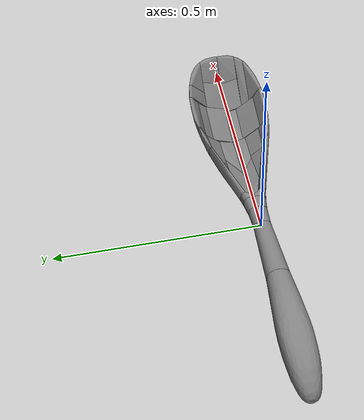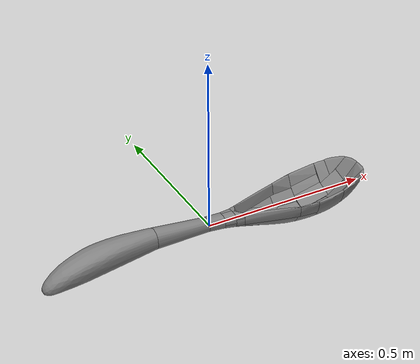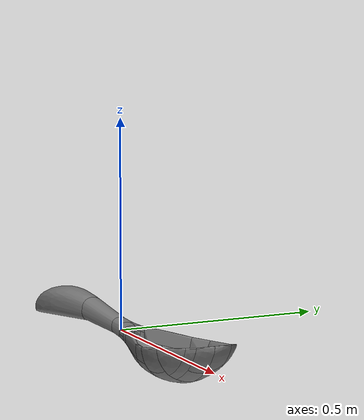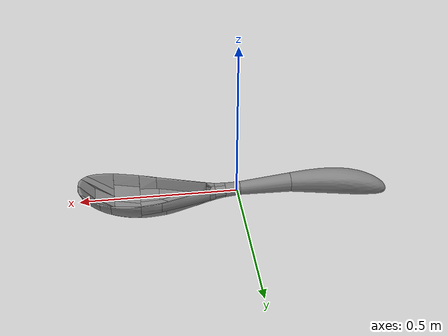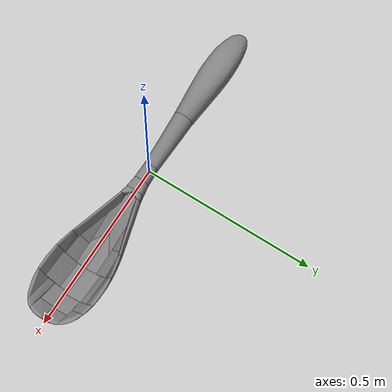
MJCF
<?xml version="1.0" ?>
<mujoco model="034_spoon_2">
  <asset>
    <mesh name="034_spoon_2_mesh" file="034_spoon_2.stl" scale="1.0 1.0 1.0"/>
    <mesh name="034_spoon_2_part_0" file="decomposed/034_spoon_2_decomposed_0.stl" scale="1.0 1.0 1.0"/>
    <mesh name="034_spoon_2_part_1" file="decomposed/034_spoon_2_decomposed_1.stl" scale="1.0 1.0 1.0"/>
    <mesh name="034_spoon_2_part_2" file="decomposed/034_spoon_2_decomposed_2.stl" scale="1.0 1.0 1.0"/>
    <mesh name="034_spoon_2_part_3" file="decomposed/034_spoon_2_decomposed_3.stl" scale="1.0 1.0 1.0"/>
    <mesh name="034_spoon_2_part_4" file="decomposed/034_spoon_2_decomposed_4.stl" scale="1.0 1.0 1.0"/>
    <mesh name="034_spoon_2_part_5" file="decomposed/034_spoon_2_decomposed_5.stl" scale="1.0 1.0 1.0"/>
    <mesh name="034_spoon_2_part_6" file="decomposed/034_spoon_2_decomposed_6.stl" scale="1.0 1.0 1.0"/>
    <mesh name="034_spoon_2_part_7" file="decomposed/034_spoon_2_decomposed_7.stl" scale="1.0 1.0 1.0"/>
    <mesh name="034_spoon_2_part_8" file="decomposed/034_spoon_2_decomposed_8.stl" scale="1.0 1.0 1.0"/>
    <mesh name="034_spoon_2_part_9" file="decomposed/034_spoon_2_decomposed_9.stl" scale="1.0 1.0 1.0"/>
    <mesh name="034_spoon_2_part_10" file="decomposed/034_spoon_2_decomposed_10.stl" scale="1.0 1.0 1.0"/>
    <mesh name="034_spoon_2_part_11" file="decomposed/034_spoon_2_decomposed_11.stl" scale="1.0 1.0 1.0"/>
    <mesh name="034_spoon_2_part_12" file="decomposed/034_spoon_2_decomposed_12.stl" scale="1.0 1.0 1.0"/>
    <mesh name="034_spoon_2_part_13" file="decomposed/034_spoon_2_decomposed_13.stl" scale="1.0 1.0 1.0"/>
    <mesh name="034_spoon_2_part_14" file="decomposed/034_spoon_2_decomposed_14.stl" scale="1.0 1.0 1.0"/>
    <mesh name="034_spoon_2_part_15" file="decomposed/034_spoon_2_decomposed_15.stl" scale="1.0 1.0 1.0"/>
    <mesh name="034_spoon_2_part_16" file="decomposed/034_spoon_2_decomposed_16.stl" scale="1.0 1.0 1.0"/>
    <mesh name="034_spoon_2_part_17" file="decomposed/034_spoon_2_decomposed_17.stl" scale="1.0 1.0 1.0"/>
    <mesh name="034_spoon_2_part_18" file="decomposed/034_spoon_2_decomposed_18.stl" scale="1.0 1.0 1.0"/>
    <mesh name="034_spoon_2_part_19" file="decomposed/034_spoon_2_decomposed_19.stl" scale="1.0 1.0 1.0"/>
    <mesh name="034_spoon_2_part_20" file="decomposed/034_spoon_2_decomposed_20.stl" scale="1.0 1.0 1.0"/>
    <mesh name="034_spoon_2_part_21" file="decomposed/034_spoon_2_decomposed_21.stl" scale="1.0 1.0 1.0"/>
    <mesh name="034_spoon_2_part_22" file="decomposed/034_spoon_2_decomposed_22.stl" scale="1.0 1.0 1.0"/>
    <mesh name="034_spoon_2_part_23" file="decomposed/034_spoon_2_decomposed_23.stl" scale="1.0 1.0 1.0"/>
    <mesh name="034_spoon_2_part_24" file="decomposed/034_spoon_2_decomposed_24.stl" scale="1.0 1.0 1.0"/>
    <mesh name="034_spoon_2_part_25" file="decomposed/034_spoon_2_decomposed_25.stl" scale="1.0 1.0 1.0"/>
    <mesh name="034_spoon_2_part_26" file="decomposed/034_spoon_2_decomposed_26.stl" scale="1.0 1.0 1.0"/>
    <mesh name="034_spoon_2_part_27" file="decomposed/034_spoon_2_decomposed_27.stl" scale="1.0 1.0 1.0"/>
    <mesh name="034_spoon_2_part_28" file="decomposed/034_spoon_2_decomposed_28.stl" scale="1.0 1.0 1.0"/>
    <mesh name="034_spoon_2_part_29" file="decomposed/034_spoon_2_decomposed_29.stl" scale="1.0 1.0 1.0"/>
    <mesh name="034_spoon_2_part_30" file="decomposed/034_spoon_2_decomposed_30.stl" scale="1.0 1.0 1.0"/>
    <mesh name="034_spoon_2_part_31" file="decomposed/034_spoon_2_decomposed_31.stl" scale="1.0 1.0 1.0"/>
    <mesh name="034_spoon_2_part_32" file="decomposed/034_spoon_2_decomposed_32.stl" scale="1.0 1.0 1.0"/>
    <mesh name="034_spoon_2_part_33" file="decomposed/034_spoon_2_decomposed_33.stl" scale="1.0 1.0 1.0"/>
    <mesh name="034_spoon_2_part_34" file="decomposed/034_spoon_2_decomposed_34.stl" scale="1.0 1.0 1.0"/>
    <mesh name="034_spoon_2_part_35" file="decomposed/034_spoon_2_decomposed_35.stl" scale="1.0 1.0 1.0"/>
    <mesh name="034_spoon_2_part_36" file="decomposed/034_spoon_2_decomposed_36.stl" scale="1.0 1.0 1.0"/>
  </asset>
  <worldbody>
    <body name="034_spoon_2">
      <geom name="034_spoon_2_geom_0" type="mesh" mesh="034_spoon_2_part_0"/>
      <geom name="034_spoon_2_geom_1" type="mesh" mesh="034_spoon_2_part_1"/>
      <geom name="034_spoon_2_geom_2" type="mesh" mesh="034_spoon_2_part_2"/>
      <geom name="034_spoon_2_geom_3" type="mesh" mesh="034_spoon_2_part_3"/>
      <geom name="034_spoon_2_geom_4" type="mesh" mesh="034_spoon_2_part_4"/>
      <geom name="034_spoon_2_geom_5" type="mesh" mesh="034_spoon_2_part_5"/>
      <geom name="034_spoon_2_geom_6" type="mesh" mesh="034_spoon_2_part_6"/>
      <geom name="034_spoon_2_geom_7" type="mesh" mesh="034_spoon_2_part_7"/>
      <geom name="034_spoon_2_geom_8" type="mesh" mesh="034_spoon_2_part_8"/>
      <geom name="034_spoon_2_geom_9" type="mesh" mesh="034_spoon_2_part_9"/>
      <geom name="034_spoon_2_geom_10" type="mesh" mesh="034_spoon_2_part_10"/>
      <geom name="034_spoon_2_geom_11" type="mesh" mesh="034_spoon_2_part_11"/>
      <geom name="034_spoon_2_geom_12" type="mesh" mesh="034_spoon_2_part_12"/>
      <geom name="034_spoon_2_geom_13" type="mesh" mesh="034_spoon_2_part_13"/>
      <geom name="034_spoon_2_geom_14" type="mesh" mesh="034_spoon_2_part_14"/>
      <geom name="034_spoon_2_geom_15" type="mesh" mesh="034_spoon_2_part_15"/>
      <geom name="034_spoon_2_geom_16" type="mesh" mesh="034_spoon_2_part_16"/>
      <geom name="034_spoon_2_geom_17" type="mesh" mesh="034_spoon_2_part_17"/>
      <geom name="034_spoon_2_geom_18" type="mesh" mesh="034_spoon_2_part_18"/>
      <geom name="034_spoon_2_geom_19" type="mesh" mesh="034_spoon_2_part_19"/>
      <geom name="034_spoon_2_geom_20" type="mesh" mesh="034_spoon_2_part_20"/>
      <geom name="034_spoon_2_geom_21" type="mesh" mesh="034_spoon_2_part_21"/>
      <geom name="034_spoon_2_geom_22" type="mesh" mesh="034_spoon_2_part_22"/>
      <geom name="034_spoon_2_geom_23" type="mesh" mesh="034_spoon_2_part_23"/>
      <geom name="034_spoon_2_geom_24" type="mesh" mesh="034_spoon_2_part_24"/>
      <geom name="034_spoon_2_geom_25" type="mesh" mesh="034_spoon_2_part_25"/>
      <geom name="034_spoon_2_geom_26" type="mesh" mesh="034_spoon_2_part_26"/>
      <geom name="034_spoon_2_geom_27" type="mesh" mesh="034_spoon_2_part_27"/>
      <geom name="034_spoon_2_geom_28" type="mesh" mesh="034_spoon_2_part_28"/>
      <geom name="034_spoon_2_geom_29" type="mesh" mesh="034_spoon_2_part_29"/>
      <geom name="034_spoon_2_geom_30" type="mesh" mesh="034_spoon_2_part_30"/>
      <geom name="034_spoon_2_geom_31" type="mesh" mesh="034_spoon_2_part_31"/>
      <geom name="034_spoon_2_geom_32" type="mesh" mesh="034_spoon_2_part_32"/>
      <geom name="034_spoon_2_geom_33" type="mesh" mesh="034_spoon_2_part_33"/>
      <geom name="034_spoon_2_geom_34" type="mesh" mesh="034_spoon_2_part_34"/>
      <geom name="034_spoon_2_geom_35" type="mesh" mesh="034_spoon_2_part_35"/>
      <geom name="034_spoon_2_geom_36" type="mesh" mesh="034_spoon_2_part_36"/>
    </body>
  </worldbody>
</mujoco>
